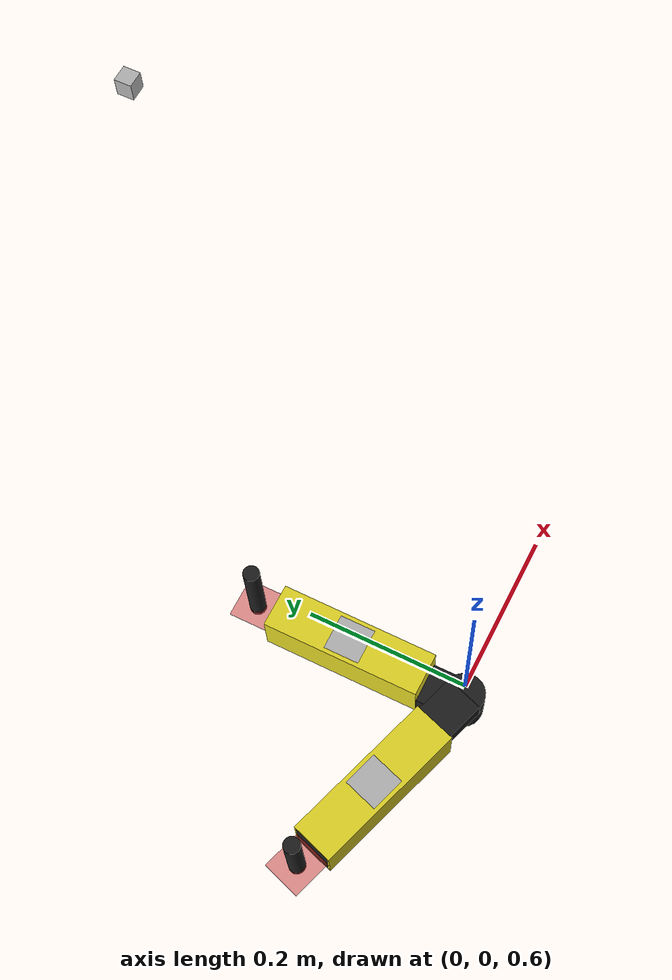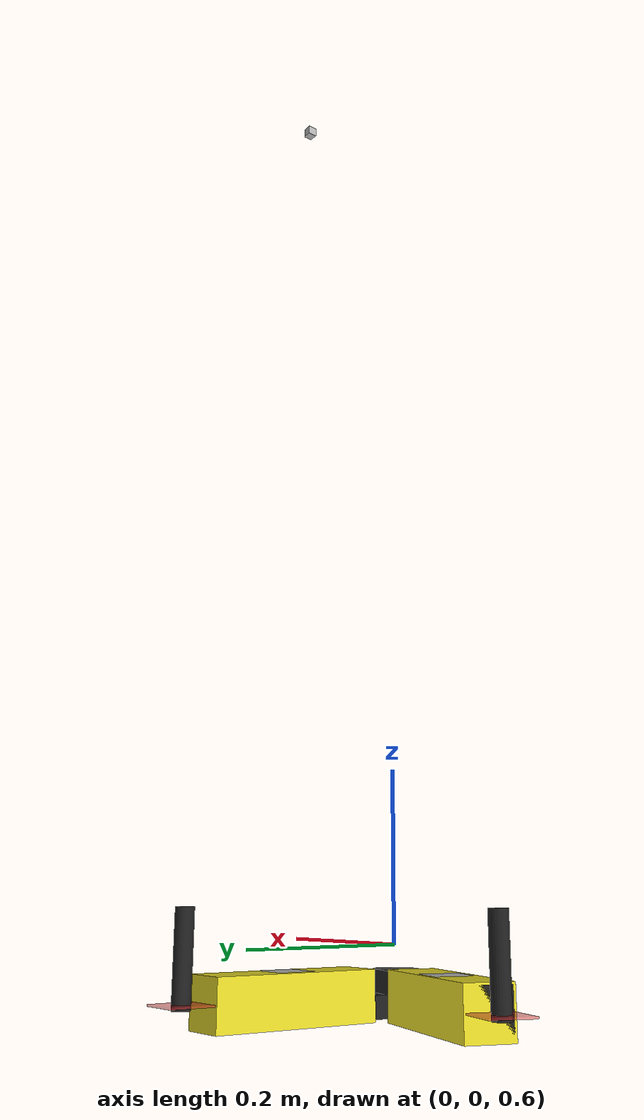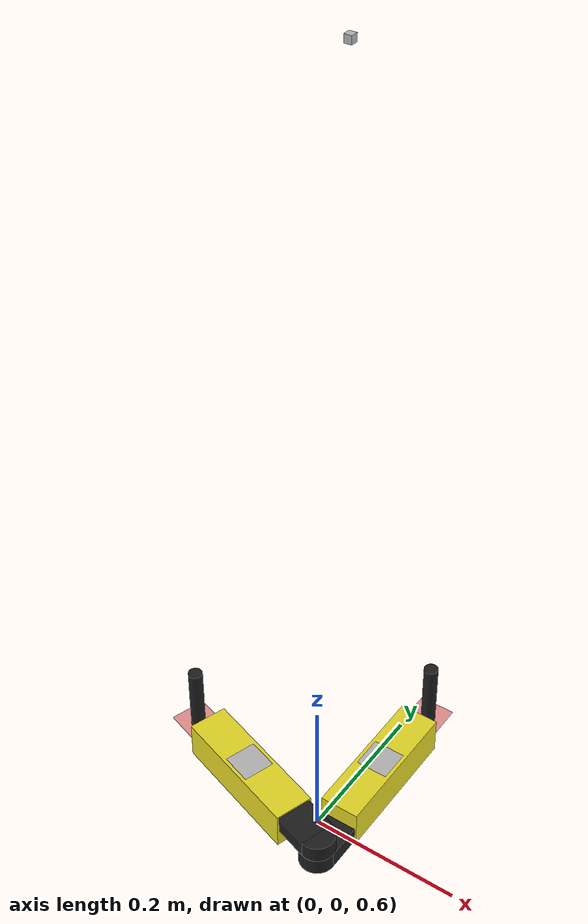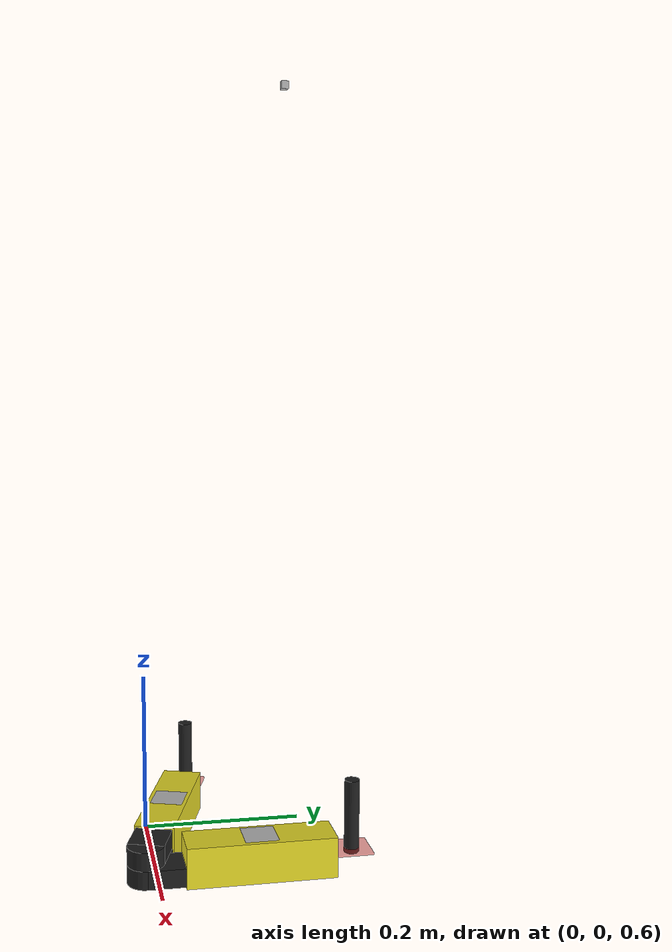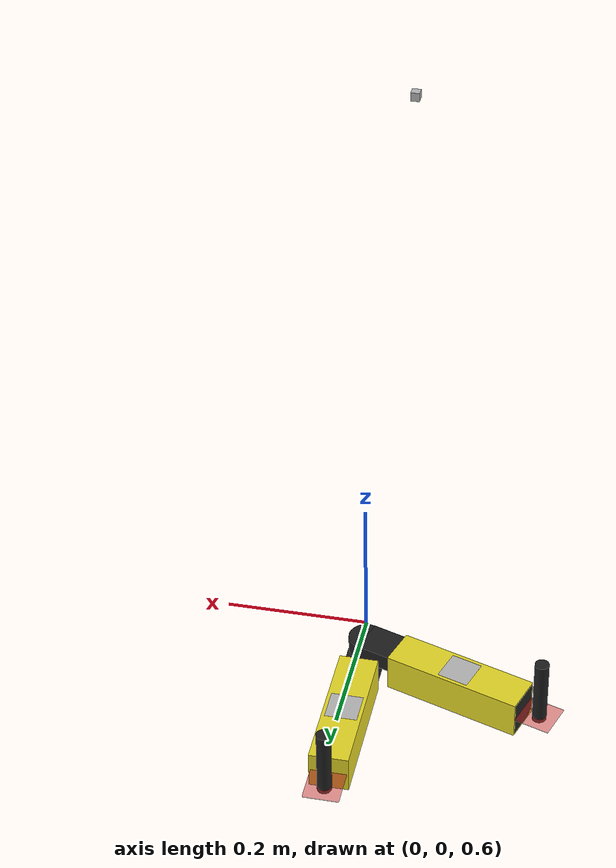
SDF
<sdf version='1.6'>
  <model name='floating_base_1R1P_2Link'>
    <link name='first_link'>
      <gravity>0</gravity>
      <pose frame=''>0 0 0.55 0 -0 0</pose>
      <inertial>
        <pose frame=''>0 0.1375 0 0 -0 0</pose>
        <mass>1</mass>
        <inertia>
          <ixx>1</ixx>
          <ixy>0</ixy>
          <ixz>0</ixz>
          <iyy>1</iyy>
          <iyz>0</iyz>
          <izz>1</izz>
        </inertia>
      </inertial>
      <collision name='first_link_collision'>
        <pose frame=''>0 0 -0.01255 0 -0 0</pose>
        <geometry>
          <cylinder>
            <length>0.025</length>
            <radius>0.025</radius>
          </cylinder>
        </geometry>
      </collision>
      <collision name='first_link_collision_1'>
        <pose frame=''>0 0.05 -0.0125 0 -0 0</pose>
        <geometry>
          <box>
            <size>0.05 0.1 0.025</size>
          </box>
        </geometry>
      </collision>
      <collision name='first_link_collision_2'>
        <pose frame=''>0 0.15 0 0 -0 0</pose>
        <geometry>
          <box>
            <size>0.05 0.2 0.05</size>
          </box>
        </geometry>
      </collision>
      <collision name='first_link_collision_3'>
        <pose frame=''>0 0.275 0 0 -0 0</pose>
        <geometry>
          <box>
            <size>0.05 0.05 0.002</size>
          </box>
        </geometry>
      </collision>
      <visual name='first_link_visual'>
        <pose frame=''>0 0 -0.0125 0 -0 0</pose>
        <geometry>
          <cylinder>
            <length>0.025</length>
            <radius>0.025</radius>
          </cylinder>
        </geometry>
        <material>
          <script>
            <name>Gazebo/Black</name>
            <uri>file://media/materials/scripts/gazebo.material</uri>
          </script>
        </material>
      </visual>
      <visual name='first_link_visual_1'>
        <pose frame=''>0 0.05 -0.01255 0 -0 0</pose>
        <geometry>
          <box>
            <size>0.05 0.1 0.025</size>
          </box>
        </geometry>
        <material>
          <script>
            <name>Gazebo/Black</name>
            <uri>file://media/materials/scripts/gazebo.material</uri>
          </script>
        </material>
      </visual>
      <visual name='first_link_visual_2'>
        <pose frame=''>0 0.15 0 0 -0 0</pose>
        <geometry>
          <box>
            <size>0.055 0.2 0.055</size>
          </box>
        </geometry>
        <material>
          <script>
            <name>Gazebo/Yellow</name>
            <uri>file://media/materials/scripts/gazebo.material</uri>
          </script>
        </material>
      </visual>
      <visual name='first_link_visual_3'>
        <pose frame=''>0 0.275 0 0 -0 0</pose>
        <geometry>
          <box>
            <size>0.05 0.05 0.002</size>
          </box>
        </geometry>
        <material>
          <script>
            <name>Gazebo/RedTransparentOverlay</name>
            <uri>file://media/materials/scripts/gazebo.material</uri>
          </script>
        </material>
      </visual>

      <visual name='first_link_dummy'>
        <pose frame=''>0 0.15 0.028 0 -0 0</pose>
        <geometry>
          <box>
            <size>0.045 0.045 0.00001</size>
          </box>
        </geometry>
        <material>
          <script>
            <uri>model://floating_base_1R1P_2Link/materials/scripts/marker5.material</uri>
            <uri>model://floating_base_1R1P_2Link/materials/textures</uri>
            <name>myMarker5</name>
          </script>
        </material>
      </visual>
    </link>

    <link name='first_link_handle'>
      <gravity>0</gravity>
      <pose frame=''>0 0.275 0.55 0 -0 0</pose>
      <inertial>
        <pose frame=''>0 0 0 0 -0 0</pose>
        <mass>0.0001</mass>
        <inertia>
          <ixx>0.0001</ixx>
          <ixy>0</ixy>
          <ixz>0</ixz>
          <iyy>0.0001</iyy>
          <iyz>0</iyz>
          <izz>0.0001</izz>
        </inertia>
      </inertial>
      <collision name='first_link_handle_collision'>
        <pose frame=''>0 0 0.045 0 -0 0</pose>
        <geometry>
          <cylinder>
            <length>0.1</length>
            <radius>0.01</radius>
          </cylinder>
        </geometry>
      </collision>

      <visual name='first_link_handle_visual_1'>
        <pose frame=''>0 0 0.045 0 -0 0</pose>
        <geometry>
          <cylinder>
            <length>0.1</length>
            <radius>0.01</radius>
          </cylinder>
        </geometry>
        <material>
          <script>
            <name>Gazebo/Black</name>
            <uri>file://media/materials/scripts/gazebo.material</uri>
          </script>
        </material>
      </visual>
    </link>
    <joint name='first_link_handle_joint' type='fixed'>
      <pose frame=''>0 0 0.0 0 -0 0</pose>
      <child>first_link_handle</child>
      <parent>first_link</parent>
      <axis>
        <dynamics>
          <damping>0</damping>
          <friction>0</friction>
          <spring_reference>0</spring_reference>
          <spring_stiffness>0</spring_stiffness>
        </dynamics>
        <use_parent_model_frame>1</use_parent_model_frame>
        <xyz>0 0 0</xyz>
      </axis>
      <sensor name='first_link_handle_ft' type='force_torque'>
        <always_on>1</always_on>
        <update_rate>100</update_rate>
        <pose>0 0 0 0 0 0</pose>
        <plugin name='first_link_handle_ft_plugin' filename='libgazebo_yarp_forcetorque.so'>
          <yarpConfigurationFile>model://floating_base_1R1P_2Link/conf/first_link_handle_ft.ini</yarpConfigurationFile>
          <frame>child</frame>
          <measured_direction>child_to_parent</measured_direction>
        </plugin>
      </sensor>
    </joint>

    <link name='middle_link'>
      <gravity>0</gravity>
      <pose frame=''>0 0 0.55 0 -0 1.256</pose>
      <inertial>
        <pose frame=''>0 0.1375 0 0 -0 0</pose>
        <mass>0.1</mass>
        <inertia>
          <ixx>0.001</ixx>
          <ixy>0</ixy>
          <ixz>0</ixz>
          <iyy>0.001</iyy>
          <iyz>0</iyz>
          <izz>0.001</izz>
        </inertia>
      </inertial>
      <collision name='middle_link_collision'>
        <pose frame=''>0 0 0.01255 0 -0 0</pose>
        <geometry>
          <cylinder>
            <length>0.025</length>
            <radius>0.025</radius>
          </cylinder>
        </geometry>
      </collision>
      <collision name='middle_link_collision_1'>
        <pose frame=''>0 0.05 0.0125 0 -0 0</pose>
        <geometry>
          <box>
            <size>0.05 0.1 0.025</size>
          </box>
        </geometry>
      </collision>
      <collision name='middle_link_collision_2'>
        <pose frame=''>0 0.15 0 0 -0 0</pose>
        <geometry>
          <box>
            <size>0.05 0.2 0.05</size>
          </box>
        </geometry>
      </collision>
      <visual name='middle_link_visual'>
        <pose frame=''>0 0 0.0125 0 -0 0</pose>
        <geometry>
          <cylinder>
            <length>0.025</length>
            <radius>0.025</radius>
          </cylinder>
        </geometry>
        <material>
          <script>
            <name>Gazebo/Black</name>
            <uri>file://media/materials/scripts/gazebo.material</uri>
          </script>
        </material>
      </visual>
      <visual name='middle_link_visual_1'>
        <pose frame=''>0 0.05 0.01255 0 -0 0</pose>
        <geometry>
          <box>
            <size>0.05 0.1 0.025</size>
          </box>
        </geometry>
        <material>
          <script>
            <name>Gazebo/Black</name>
            <uri>file://media/materials/scripts/gazebo.material</uri>
          </script>
        </material>
      </visual>
      <visual name='middle_link_visual_2'>
        <pose frame=''>0 0.15 0 0 -0 0</pose>
        <geometry>
          <box>
            <size>0.05 0.2 0.05</size>
          </box>
        </geometry>
        <material>
          <script>
            <name>Gazebo/Black</name>
            <uri>file://media/materials/scripts/gazebo.material</uri>
          </script>
        </material>
      </visual>
    </link>
    <joint name='first_joint' type='revolute'>
      <child>middle_link</child>
      <parent>first_link</parent>
      <axis>
        <xyz>0 0 1</xyz>
        <limit>
          <lower>0</lower>
          <upper>1.1775</upper>
          <effort>30</effort>
          <velocity>1</velocity>
        </limit>
        <dynamics>
          <spring_reference>0</spring_reference>
          <spring_stiffness>0</spring_stiffness>
        </dynamics>
        <use_parent_model_frame>1</use_parent_model_frame>
      </axis>
    </joint>
    <link name='second_link'>
      <gravity>0</gravity>
      <pose frame=''>0 0 0.55 0 -0 1.256</pose>
      <inertial>
        <pose frame=''>0 0.1375 0 0 -0 0</pose>
        <mass>2</mass>
        <inertia>
          <ixx>1</ixx>
          <ixy>0</ixy>
          <ixz>0</ixz>
          <iyy>1</iyy>
          <iyz>0</iyz>
          <izz>1</izz>
        </inertia>
      </inertial>
      <collision name='second_link_collision'>
        <pose frame=''>0 0.15 0 0 -0 0</pose>
        <geometry>
          <box>
            <size>0.05 0.2 0.05</size>
          </box>
        </geometry>
      </collision>
      <collision name='second_link_collision_1'>
        <pose frame=''>0 0.275 0 0 0 0</pose>
        <geometry>
          <box>
            <size>0.05 0.05 0.002</size>
          </box>
        </geometry>
      </collision>
      <visual name='second_link_visual'>
        <pose frame=''>0 0.15 0 0 -0 0</pose>
        <geometry>
          <box>
            <size>0.055 0.2 0.055</size>
          </box>
        </geometry>
        <material>
          <script>
            <name>Gazebo/Yellow</name>
            <uri>file://media/materials/scripts/gazebo.material</uri>
          </script>
        </material>
      </visual>
      <visual name='second_link_visual_1'>
        <pose frame=''>0 0.275 0 0 -0 0</pose>
        <geometry>
          <box>
            <size>0.05 0.05 0.002</size>
          </box>
        </geometry>
        <material>
          <script>
            <name>Gazebo/RedTransparentOverlay</name>
            <uri>file://media/materials/scripts/gazebo.material</uri>
          </script>
        </material>
      </visual>
      <visual name='second_link_dummy'>
        <pose frame=''>0 0.15 0.0275 0 -0 0</pose>
        <geometry>
          <box>
            <size>0.045 0.045 0.00001</size>
          </box>
        </geometry>
        <material>
          <script>
            <uri>model://floating_base_1R1P_2Link/materials/scripts/marker4.material</uri>
            <uri>model://floating_base_1R1P_2Link/materials/textures</uri>
            <name>myMarker4</name>
          </script>
        </material>
      </visual>
    </link>
    <joint name='second_joint' type='prismatic'>
      <child>second_link</child>
      <parent>middle_link</parent>
      <axis>
        <xyz>-0.950859 0.309623 0</xyz>
        <limit>
          <lower>0</lower>
          <upper>0.07</upper>
          <effort>30</effort>
          <velocity>1</velocity>
        </limit>
        <dynamics>
          <spring_reference>0</spring_reference>
          <spring_stiffness>0</spring_stiffness>
        </dynamics>
        <use_parent_model_frame>1</use_parent_model_frame>
      </axis>
    </joint>
    <link name='second_link_handle'>
      <gravity>0</gravity>
      <pose frame=''>-0.261 0.085 0.55 0 -0 1.256</pose>
      <inertial>
        <pose frame=''>0 0 0 0 -0 0</pose>
        <mass>0.0001</mass>
        <inertia>
          <ixx>0.0001</ixx>
          <ixy>0</ixy>
          <ixz>0</ixz>
          <iyy>0.0001</iyy>
          <iyz>0</iyz>
          <izz>0.0001</izz>
        </inertia>
      </inertial>
      <collision name='second_link_handle_collision'>
        <pose frame=''>0 0 0.045 0 -0 0</pose>
        <geometry>
          <cylinder>
            <length>0.1</length>
            <radius>0.01</radius>
          </cylinder>
        </geometry>
      </collision>
      <visual name='second_link_handle_visual'>
        <pose frame=''>0 0 0.045 0 -0 0</pose>
        <geometry>
          <cylinder>
            <length>0.1</length>
            <radius>0.01</radius>
          </cylinder>
        </geometry>
        <material>
          <script>
            <name>Gazebo/Black</name>
            <uri>file://media/materials/scripts/gazebo.material</uri>
          </script>
        </material>
      </visual>
    </link>
    <joint name='second_link_handle_joint' type='fixed'>
      <pose frame=''>0 0 0.0 0 -0 0</pose>
      <child>second_link_handle</child>
      <parent>second_link</parent>
      <axis>
        <dynamics>
          <damping>0</damping>
          <friction>0</friction>
          <spring_reference>0</spring_reference>
          <spring_stiffness>0</spring_stiffness>
        </dynamics>
        <use_parent_model_frame>1</use_parent_model_frame>
        <xyz>0 0 0</xyz>
      </axis>
      <sensor name='second_link_handle_ft' type='force_torque'>
        <always_on>1</always_on>
        <update_rate>100</update_rate>
        <pose>0 0 0 0 0 0</pose>
        <plugin name='second_link_handle_ft_plugin' filename='libgazebo_yarp_forcetorque.so'>
          <yarpConfigurationFile>model://floating_base_1R1P_2Link/conf/second_link_handle_ft.ini</yarpConfigurationFile>
          <frame>child</frame>
          <measured_direction>child_to_parent</measured_direction>
        </plugin>
      </sensor>
    </joint>

    <!--Gazebo Yarp Plugin-->

    <link name="camera_link">
      <gravity>0</gravity>
      <pose frame=''>-0.1 0.2 1.55 0 1.57 0</pose>
      <visual name="camera_link_visual">
        <geometry>
          <box>
            <size>0.01 0.01 0.01</size>
          </box>
        </geometry>
      </visual>
      <sensor name="camera_sensor" type="camera">
        <camera>
          <horizontal_fov>1.5708</horizontal_fov>
          <image>
            <width>640</width>
            <height>480</height>
          </image>
          <clip>
            <near>0.1</near>
            <far>100</far>
          </clip>
        </camera>
        <always_on>1</always_on>
        <update_rate>30</update_rate>
        <visualize>true</visualize>
        <plugin name="camera_plugin" filename="libgazebo_yarp_camera.so">
          <yarpConfigurationFile>model://floating_base_1R1P_2Link/conf/camera.ini</yarpConfigurationFile>
        </plugin>
      </sensor>
    </link>

  </model>
</sdf>
